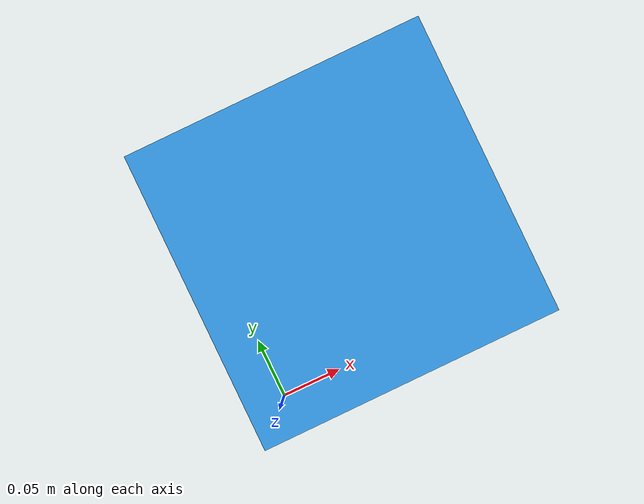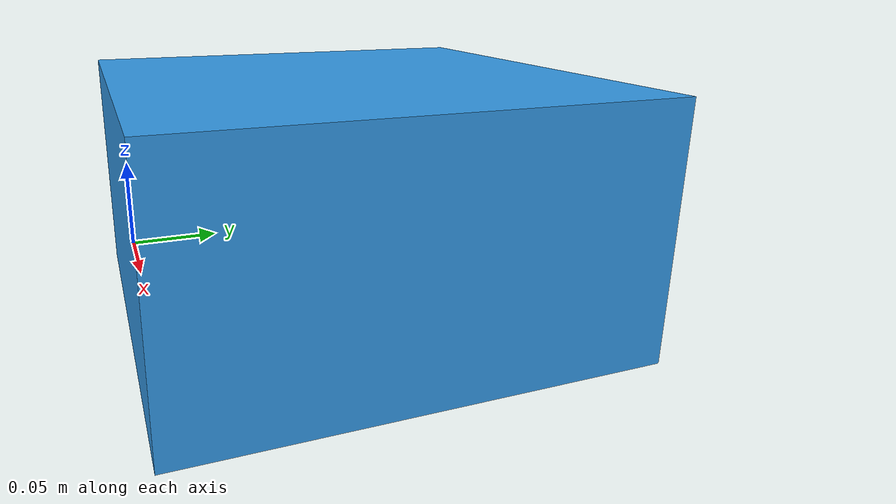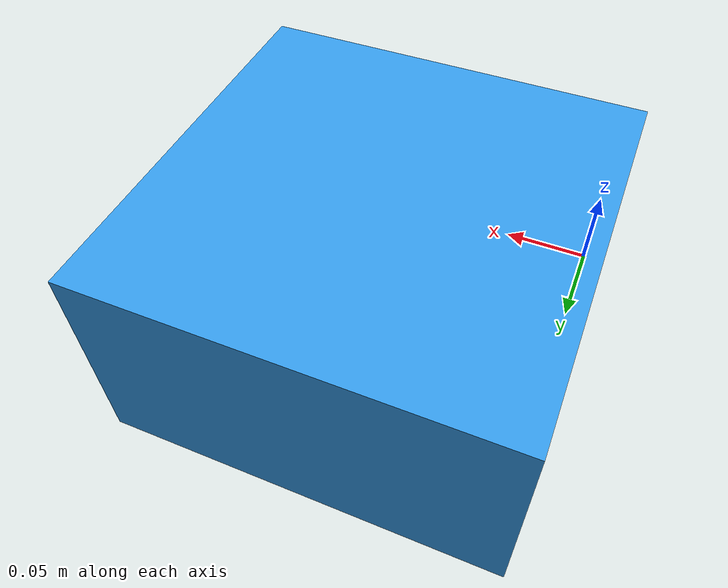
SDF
<?xml version="1.0"?>
<sdf version="1.9">
  <world name="world_demo">
    <!-- 見やすさ向上（真っ黒対策） -->
    <scene>
      <ambient>0.6 0.6 0.6 1</ambient>
      <background>0.8 0.8 0.85 1</background>
      <shadows>true</shadows>
    </scene>

    <gravity>0 0 -9.81</gravity>

    <!-- sun 相当の平行光 -->
    <light type="directional" name="sun">
      <cast_shadows>true</cast_shadows>
      <direction>-0.4 0.3 -1</direction>
      <diffuse>1 1 1 1</diffuse>
      <specular>0.2 0.2 0.2 1</specular>
      <attenuation>
        <range>500</range>
        <constant>1.0</constant>
        <linear>0.01</linear>
        <quadratic>0.001</quadratic>
      </attenuation>
    </light>

    <!-- OBJ メッシュ（visual / collision） -->
    <model name="world_demo_mesh">
      <static>true</static>
      <!-- 部屋の高さが10m想定：原点が中心なら z=5 に持ち上げておく -->
      <pose>0 0 0.1 0 0 0</pose>
      <link name="mesh_link">
        <visual name="mesh_vis">
          <geometry>
            <mesh>
              <uri>file:///home/morita/g4_ros_ws/src/g4_bringup/worlds/world_demo.obj</uri>
              <!-- いまの設定（1000）を維持。※単位がmmなら本来は 0.001 が正（後述） -->
              <scale>1 1 1</scale>
            </mesh>
          </geometry>
          <!-- MTL/テクスチャ無しでも見えるよう色を設定 -->
          <material>
            <ambient>0.2 0.6 0.9 1</ambient>
            <diffuse>0.2 0.6 0.9 1</diffuse>
            <specular>0.1 0.1 0.1 1</specular>
          </material>
          <cast_shadows>true</cast_shadows>
        </visual>
        <collision name="mesh_col">
          <geometry>
            <mesh>
              <uri>file:///home/morita/g4_ros_ws/src/g4_bringup/worlds/world_demo.obj</uri>
              <scale>1 1 1</scale>
            </mesh>
          </geometry>
        </collision>
      </link>
    </model>

  </world>
</sdf>
